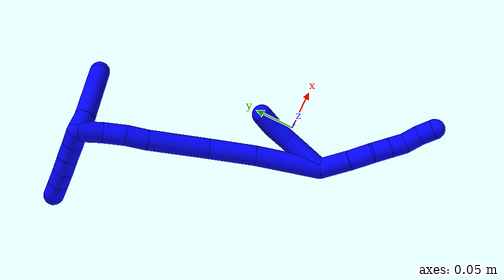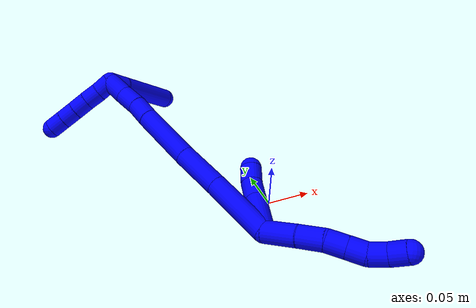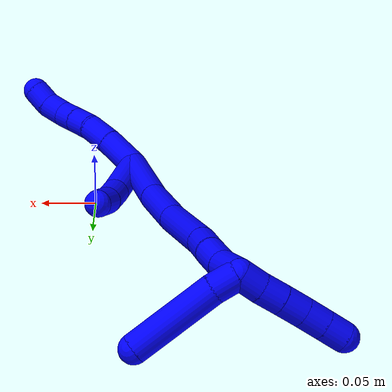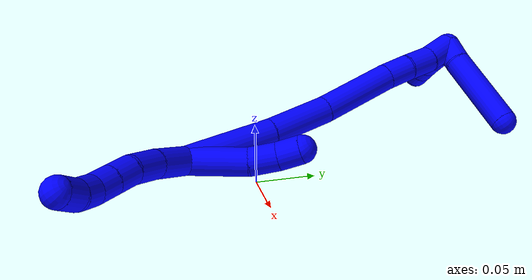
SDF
<sdf version="1.7">
 <world name="default">
  <model name="photoneo_s_sensor">
   <static>1</static>
   <pose>0 0 2 1.57079 1.57079 3.14159</pose>
   <link name="link">
    <inertial><mass>0.1</mass></inertial>
    <sensor name="sensor" type="depth">
     <update_rate>30</update_rate>
     <camera>
      <horizontal_fov>1.22</horizontal_fov>
      <image><width>1920</width><height>1200</height><format>B8G8R8</format></image>
      <clip><near>0.1</near><far>4</far></clip>
      <depth_camera><output>points</output></depth_camera>
     </camera>
     <plugin name="camera_plugin" filename="libgazebo_ros_depth_camera.so">
      <baseline>0.2</baseline>
      <alwaysOn>1</alwaysOn>
      <updateRate>0.0</updateRate>
      <cameraName>camera_ir</cameraName>
      <imageTopicName>/camera/color/image_raw</imageTopicName>
      <cameraInfoTopicName>/camera/color/camera_info</cameraInfoTopicName>
      <depthImageTopicName>/camera/depth/image_raw</depthImageTopicName>
      <depthImageCameraInfoTopicName>/camera/depth/camera_info</depthImageCameraInfoTopicName>
      <pointCloudTopicName>/camera/depth/points</pointCloudTopicName>
      <frameName>fr_optical</frameName>
      <pointCloudCutoff>0.1</pointCloudCutoff>
      <pointCloudCutoffMax>2.0</pointCloudCutoffMax>
      <distortionK1>0</distortionK1>
      <distortionK2>0</distortionK2>
      <distortionK3>0</distortionK3>
      <distortionT1>0</distortionT1>
      <distortionT2>0</distortionT2>
      <CxPrime>0</CxPrime>
      <Cx>0</Cx>
      <Cy>0</Cy>
      <focalLength>0</focalLength>
      <hackBaseline>0</hackBaseline>
     </plugin>
    </sensor>
   </link>
  </model>
  <model name="bin">
   <static>1</static>
   <link name="bottom">
    <collision name="collision-bottom">
     <pose>0 0 -0.01 0 -0 0</pose>
     <geometry><box><size>0.8 0.6 0.02</size></box></geometry>
     <surface>
      <friction><ode><mu>100</mu><mu2>100</mu2></ode></friction>
      <contact><collide_bitmask>65535</collide_bitmask></contact>
     </surface>
    </collision>
   </link>
   <link name="west_wall">
    <collision name="collision-west_wall">
     <pose>-0.41 0 0.1 0 -0 0</pose>
     <geometry><box><size>0.02 0.6 0.2</size></box></geometry>
     <surface>
      <friction><ode><mu>100</mu><mu2>100</mu2></ode></friction>
      <contact><collide_bitmask>65535</collide_bitmask></contact>
     </surface>
    </collision>
   </link>
   <link name="east_wall">
    <collision name="collision-east_wall">
     <pose>0.41 0 0.1 0 -0 0</pose>
     <geometry><box><size>0.02 0.6 0.2</size></box></geometry>
     <surface>
      <friction><ode><mu>100</mu><mu2>100</mu2></ode></friction>
      <contact><collide_bitmask>65535</collide_bitmask></contact>
     </surface>
    </collision>
   </link>
   <link name="south_wall">
    <collision name="collision-south_wall">
     <pose>0 -0.31 0.1 0 -0 0</pose>
     <geometry><box><size>0.8 0.02 0.2</size></box></geometry>
     <surface>
      <friction><ode><mu>100</mu><mu2>100</mu2></ode></friction>
      <contact><collide_bitmask>65535</collide_bitmask></contact>
     </surface>
    </collision>
   </link>
   <link name="north_wall">
    <collision name="collision-north_wall">
     <pose>0 0.31 0.1 0 -0 0</pose>
     <geometry><box><size>0.8 0.02 0.2</size></box></geometry>
     <surface>
      <friction><ode><mu>100</mu><mu2>100</mu2></ode></friction>
      <contact><collide_bitmask>65535</collide_bitmask></contact>
     </surface>
    </collision>
   </link>
  </model>
  <model name="1">
   <static>0</static>
   <link name="1">
    <collision name="collision-cylinder-e_1_2_8">
     <pose>0.015125 -0.0118 -0.001164 1.6691 0.905895 0.985699</pose>
     <geometry><cylinder><radius>0.0125</radius><length>0.038438</length></cylinder></geometry>
     <surface>
      <friction><ode><mu>1.16</mu><mu2>1.16</mu2><slip1>0</slip1><slip2>0</slip2></ode></friction>
      <contact><ode><kp>1e+06</kp><kd>1</kd><max_vel>0</max_vel><min_depth>0.001</min_depth></ode></contact>
     </surface>
    </collision>
    <visual name="visual-cylinder-e_1_2_8">
     <pose>0.015125 -0.0118 -0.001164 1.6691 0.905895 0.985699</pose>
     <geometry><cylinder><radius>0.0125</radius><length>0.038438</length></cylinder></geometry>
     <material><ambient>0 0 1 1</ambient></material>
    </visual>
    <collision name="collision-cylinder-e_2_8_9">
     <pose>0.042337 -0.031429 -0.003347 1.70029 0.992233 1.10468</pose>
     <geometry><cylinder><radius>0.0125</radius><length>0.028874</length></cylinder></geometry>
     <surface>
      <friction><ode><mu>1.16</mu><mu2>1.16</mu2><slip1>0</slip1><slip2>0</slip2></ode></friction>
      <contact><ode><kp>1e+06</kp><kd>1</kd><max_vel>0</max_vel><min_depth>0.001</min_depth></ode></contact>
     </surface>
    </collision>
    <visual name="visual-cylinder-e_2_8_9">
     <pose>0.042337 -0.031429 -0.003347 1.70029 0.992233 1.10468</pose>
     <geometry><cylinder><radius>0.0125</radius><length>0.028874</length></cylinder></geometry>
     <material><ambient>0 0 1 1</ambient></material>
    </visual>
    <collision name="collision-cylinder-e_3_9_10">
     <pose>0.064183 -0.043684 -0.006765 2.06738 1.09453 1.59378</pose>
     <geometry><cylinder><radius>0.0125</radius><length>0.021961</length></cylinder></geometry>
     <surface>
      <friction><ode><mu>1.16</mu><mu2>1.16</mu2><slip1>0</slip1><slip2>0</slip2></ode></friction>
      <contact><ode><kp>1e+06</kp><kd>1</kd><max_vel>0</max_vel><min_depth>0.001</min_depth></ode></contact>
     </surface>
    </collision>
    <visual name="visual-cylinder-e_3_9_10">
     <pose>0.064183 -0.043684 -0.006765 2.06738 1.09453 1.59378</pose>
     <geometry><cylinder><radius>0.0125</radius><length>0.021961</length></cylinder></geometry>
     <material><ambient>0 0 1 1</ambient></material>
    </visual>
    <collision name="collision-cylinder-e_4_10_11">
     <pose>0.082854 -0.052142 -0.011391 2.07566 1.09373 1.60231</pose>
     <geometry><cylinder><radius>0.0125</radius><length>0.020065</length></cylinder></geometry>
     <surface>
      <friction><ode><mu>1.16</mu><mu2>1.16</mu2><slip1>0</slip1><slip2>0</slip2></ode></friction>
      <contact><ode><kp>1e+06</kp><kd>1</kd><max_vel>0</max_vel><min_depth>0.001</min_depth></ode></contact>
     </surface>
    </collision>
    <visual name="visual-cylinder-e_4_10_11">
     <pose>0.082854 -0.052142 -0.011391 2.07566 1.09373 1.60231</pose>
     <geometry><cylinder><radius>0.0125</radius><length>0.020065</length></cylinder></geometry>
     <material><ambient>0 0 1 1</ambient></material>
    </visual>
    <collision name="collision-cylinder-e_5_11_12">
     <pose>0.100702 -0.060924 -0.012621 1.36367 1.07322 0.899622</pose>
     <geometry><cylinder><radius>0.0125</radius><length>0.020339</length></cylinder></geometry>
     <surface>
      <friction><ode><mu>1.16</mu><mu2>1.16</mu2><slip1>0</slip1><slip2>0</slip2></ode></friction>
      <contact><ode><kp>1e+06</kp><kd>1</kd><max_vel>0</max_vel><min_depth>0.001</min_depth></ode></contact>
     </surface>
    </collision>
    <visual name="visual-cylinder-e_5_11_12">
     <pose>0.100702 -0.060924 -0.012621 1.36367 1.07322 0.899622</pose>
     <geometry><cylinder><radius>0.0125</radius><length>0.020339</length></cylinder></geometry>
     <material><ambient>0 0 1 1</ambient></material>
    </visual>
    <collision name="collision-cylinder-e_6_12_6">
     <pose>0.116811 -0.072673 -0.009943 1.33521 0.783629 0.629794</pose>
     <geometry><cylinder><radius>0.0125</radius><length>0.020324</length></cylinder></geometry>
     <surface>
      <friction><ode><mu>1.16</mu><mu2>1.16</mu2><slip1>0</slip1><slip2>0</slip2></ode></friction>
      <contact><ode><kp>1e+06</kp><kd>1</kd><max_vel>0</max_vel><min_depth>0.001</min_depth></ode></contact>
     </surface>
    </collision>
    <visual name="visual-cylinder-e_6_12_6">
     <pose>0.116811 -0.072673 -0.009943 1.33521 0.783629 0.629794</pose>
     <geometry><cylinder><radius>0.0125</radius><length>0.020324</length></cylinder></geometry>
     <material><ambient>0 0 1 1</ambient></material>
    </visual>
    <collision name="collision-cylinder-e_1_2_13">
     <pose>-0.002511 0.017706 0.019651 -0.733371 -0.094634 0.036368</pose>
     <geometry><cylinder><radius>0.0125</radius><length>0.05314</length></cylinder></geometry>
     <surface>
      <friction><ode><mu>1.16</mu><mu2>1.16</mu2><slip1>0</slip1><slip2>0</slip2></ode></friction>
      <contact><ode><kp>1e+06</kp><kd>1</kd><max_vel>0</max_vel><min_depth>0.001</min_depth></ode></contact>
     </surface>
    </collision>
    <visual name="visual-cylinder-e_1_2_13">
     <pose>-0.002511 0.017706 0.019651 -0.733371 -0.094634 0.036368</pose>
     <geometry><cylinder><radius>0.0125</radius><length>0.05314</length></cylinder></geometry>
     <material><ambient>0 0 1 1</ambient></material>
    </visual>
    <collision name="collision-cylinder-e_2_13_14">
     <pose>-0.007325 0.041914 0.050066 -0.54341 -0.181168 0.0506</pose>
     <geometry><cylinder><radius>0.0125</radius><length>0.02557</length></cylinder></geometry>
     <surface>
      <friction><ode><mu>1.16</mu><mu2>1.16</mu2><slip1>0</slip1><slip2>0</slip2></ode></friction>
      <contact><ode><kp>1e+06</kp><kd>1</kd><max_vel>0</max_vel><min_depth>0.001</min_depth></ode></contact>
     </surface>
    </collision>
    <visual name="visual-cylinder-e_2_13_14">
     <pose>-0.007325 0.041914 0.050066 -0.54341 -0.181168 0.0506</pose>
     <geometry><cylinder><radius>0.0125</radius><length>0.02557</length></cylinder></geometry>
     <material><ambient>0 0 1 1</ambient></material>
    </visual>
    <collision name="collision-cylinder-e_3_14_5">
     <pose>-0.010472 0.052167 0.070757 -0.361241 -0.07935 0.014497</pose>
     <geometry><cylinder><radius>0.0125</radius><length>0.02129</length></cylinder></geometry>
     <surface>
      <friction><ode><mu>1.16</mu><mu2>1.16</mu2><slip1>0</slip1><slip2>0</slip2></ode></friction>
      <contact><ode><kp>1e+06</kp><kd>1</kd><max_vel>0</max_vel><min_depth>0.001</min_depth></ode></contact>
     </surface>
    </collision>
    <visual name="visual-cylinder-e_3_14_5">
     <pose>-0.010472 0.052167 0.070757 -0.361241 -0.07935 0.014497</pose>
     <geometry><cylinder><radius>0.0125</radius><length>0.02129</length></cylinder></geometry>
     <material><ambient>0 0 1 1</ambient></material>
    </visual>
    <collision name="collision-cylinder-e_1_2_15">
     <pose>-0.025403 0.02142 0.024931 -0.709796 -0.657975 0.251696</pose>
     <geometry><cylinder><radius>0.0125</radius><length>0.083083</length></cylinder></geometry>
     <surface>
      <friction><ode><mu>1.16</mu><mu2>1.16</mu2><slip1>0</slip1><slip2>0</slip2></ode></friction>
      <contact><ode><kp>1e+06</kp><kd>1</kd><max_vel>0</max_vel><min_depth>0.001</min_depth></ode></contact>
     </surface>
    </collision>
    <visual name="visual-cylinder-e_1_2_15">
     <pose>-0.025403 0.02142 0.024931 -0.709796 -0.657975 0.251696</pose>
     <geometry><cylinder><radius>0.0125</radius><length>0.083083</length></cylinder></geometry>
     <material><ambient>0 0 1 1</ambient></material>
    </visual>
    <collision name="collision-cylinder-e_2_15_16">
     <pose>-0.070118 0.056251 0.067304 -0.655486 -0.720365 0.254713</pose>
     <geometry><cylinder><radius>0.0125</radius><length>0.058549</length></cylinder></geometry>
     <surface>
      <friction><ode><mu>1.16</mu><mu2>1.16</mu2><slip1>0</slip1><slip2>0</slip2></ode></friction>
      <contact><ode><kp>1e+06</kp><kd>1</kd><max_vel>0</max_vel><min_depth>0.001</min_depth></ode></contact>
     </surface>
    </collision>
    <visual name="visual-cylinder-e_2_15_16">
     <pose>-0.070118 0.056251 0.067304 -0.655486 -0.720365 0.254713</pose>
     <geometry><cylinder><radius>0.0125</radius><length>0.058549</length></cylinder></geometry>
     <material><ambient>0 0 1 1</ambient></material>
    </visual>
    <collision name="collision-cylinder-e_3_16_17">
     <pose>-0.114724 0.083919 0.108255 -0.545144 -0.743756 0.217189</pose>
     <geometry><cylinder><radius>0.0125</radius><length>0.074719</length></cylinder></geometry>
     <surface>
      <friction><ode><mu>1.16</mu><mu2>1.16</mu2><slip1>0</slip1><slip2>0</slip2></ode></friction>
      <contact><ode><kp>1e+06</kp><kd>1</kd><max_vel>0</max_vel><min_depth>0.001</min_depth></ode></contact>
     </surface>
    </collision>
    <visual name="visual-cylinder-e_3_16_17">
     <pose>-0.114724 0.083919 0.108255 -0.545144 -0.743756 0.217189</pose>
     <geometry><cylinder><radius>0.0125</radius><length>0.074719</length></cylinder></geometry>
     <material><ambient>0 0 1 1</ambient></material>
    </visual>
    <collision name="collision-cylinder-e_4_17_18">
     <pose>-0.148169 0.103928 0.140428 -0.586034 -0.664746 0.207534</pose>
     <geometry><cylinder><radius>0.0125</radius><length>0.026428</length></cylinder></geometry>
     <surface>
      <friction><ode><mu>1.16</mu><mu2>1.16</mu2><slip1>0</slip1><slip2>0</slip2></ode></friction>
      <contact><ode><kp>1e+06</kp><kd>1</kd><max_vel>0</max_vel><min_depth>0.001</min_depth></ode></contact>
     </surface>
    </collision>
    <visual name="visual-cylinder-e_4_17_18">
     <pose>-0.148169 0.103928 0.140428 -0.586034 -0.664746 0.207534</pose>
     <geometry><cylinder><radius>0.0125</radius><length>0.026428</length></cylinder></geometry>
     <material><ambient>0 0 1 1</ambient></material>
    </visual>
    <collision name="collision-cylinder-e_5_18_19">
     <pose>-0.165715 0.116268 0.156832 -0.705285 -0.746144 0.286124</pose>
     <geometry><cylinder><radius>0.0125</radius><length>0.02768</length></cylinder></geometry>
     <surface>
      <friction><ode><mu>1.16</mu><mu2>1.16</mu2><slip1>0</slip1><slip2>0</slip2></ode></friction>
      <contact><ode><kp>1e+06</kp><kd>1</kd><max_vel>0</max_vel><min_depth>0.001</min_depth></ode></contact>
     </surface>
    </collision>
    <visual name="visual-cylinder-e_5_18_19">
     <pose>-0.165715 0.116268 0.156832 -0.705285 -0.746144 0.286124</pose>
     <geometry><cylinder><radius>0.0125</radius><length>0.02768</length></cylinder></geometry>
     <material><ambient>0 0 1 1</ambient></material>
    </visual>
    <collision name="collision-cylinder-e_6_19_1">
     <pose>-0.18607 0.127523 0.173303 -0.4908 -0.836124 0.221611</pose>
     <geometry><cylinder><radius>0.0125</radius><length>0.02954</length></cylinder></geometry>
     <surface>
      <friction><ode><mu>1.16</mu><mu2>1.16</mu2><slip1>0</slip1><slip2>0</slip2></ode></friction>
      <contact><ode><kp>1e+06</kp><kd>1</kd><max_vel>0</max_vel><min_depth>0.001</min_depth></ode></contact>
     </surface>
    </collision>
    <visual name="visual-cylinder-e_6_19_1">
     <pose>-0.18607 0.127523 0.173303 -0.4908 -0.836124 0.221611</pose>
     <geometry><cylinder><radius>0.0125</radius><length>0.02954</length></cylinder></geometry>
     <material><ambient>0 0 1 1</ambient></material>
    </visual>
    <collision name="collision-cylinder-e_1_1_20">
     <pose>-0.203193 0.136105 0.175202 -2.62124 -0.66393 1.82642</pose>
     <geometry><cylinder><radius>0.0125</radius><length>0.02</length></cylinder></geometry>
     <surface>
      <friction><ode><mu>1.16</mu><mu2>1.16</mu2><slip1>0</slip1><slip2>0</slip2></ode></friction>
      <contact><ode><kp>1e+06</kp><kd>1</kd><max_vel>0</max_vel><min_depth>0.001</min_depth></ode></contact>
     </surface>
    </collision>
    <visual name="visual-cylinder-e_1_1_20">
     <pose>-0.203193 0.136105 0.175202 -2.62124 -0.66393 1.82642</pose>
     <geometry><cylinder><radius>0.0125</radius><length>0.02</length></cylinder></geometry>
     <material><ambient>0 0 1 1</ambient></material>
    </visual>
    <collision name="collision-cylinder-e_2_20_21">
     <pose>-0.216117 0.143416 0.16183 -2.66266 -0.742594 2.02143</pose>
     <geometry><cylinder><radius>0.0125</radius><length>0.02</length></cylinder></geometry>
     <surface>
      <friction><ode><mu>1.16</mu><mu2>1.16</mu2><slip1>0</slip1><slip2>0</slip2></ode></friction>
      <contact><ode><kp>1e+06</kp><kd>1</kd><max_vel>0</max_vel><min_depth>0.001</min_depth></ode></contact>
     </surface>
    </collision>
    <visual name="visual-cylinder-e_2_20_21">
     <pose>-0.216117 0.143416 0.16183 -2.66266 -0.742594 2.02143</pose>
     <geometry><cylinder><radius>0.0125</radius><length>0.02</length></cylinder></geometry>
     <material><ambient>0 0 1 1</ambient></material>
    </visual>
    <collision name="collision-cylinder-e_3_21_22">
     <pose>-0.229385 0.150255 0.148523 -2.67099 -0.708335 1.99113</pose>
     <geometry><cylinder><radius>0.0125</radius><length>0.02</length></cylinder></geometry>
     <surface>
      <friction><ode><mu>1.16</mu><mu2>1.16</mu2><slip1>0</slip1><slip2>0</slip2></ode></friction>
      <contact><ode><kp>1e+06</kp><kd>1</kd><max_vel>0</max_vel><min_depth>0.001</min_depth></ode></contact>
     </surface>
    </collision>
    <visual name="visual-cylinder-e_3_21_22">
     <pose>-0.229385 0.150255 0.148523 -2.67099 -0.708335 1.99113</pose>
     <geometry><cylinder><radius>0.0125</radius><length>0.02</length></cylinder></geometry>
     <material><ambient>0 0 1 1</ambient></material>
    </visual>
    <collision name="collision-cylinder-e_4_22_23">
     <pose>-0.242464 0.157373 0.135174 -2.63221 -0.717268 1.92748</pose>
     <geometry><cylinder><radius>0.0125</radius><length>0.02</length></cylinder></geometry>
     <surface>
      <friction><ode><mu>1.16</mu><mu2>1.16</mu2><slip1>0</slip1><slip2>0</slip2></ode></friction>
      <contact><ode><kp>1e+06</kp><kd>1</kd><max_vel>0</max_vel><min_depth>0.001</min_depth></ode></contact>
     </surface>
    </collision>
    <visual name="visual-cylinder-e_4_22_23">
     <pose>-0.242464 0.157373 0.135174 -2.63221 -0.717268 1.92748</pose>
     <geometry><cylinder><radius>0.0125</radius><length>0.02</length></cylinder></geometry>
     <material><ambient>0 0 1 1</ambient></material>
    </visual>
    <collision name="collision-cylinder-e_5_23_4">
     <pose>-0.255638 0.164769 0.12207 -2.62327 -0.720957 1.91567</pose>
     <geometry><cylinder><radius>0.0125</radius><length>0.02</length></cylinder></geometry>
     <surface>
      <friction><ode><mu>1.16</mu><mu2>1.16</mu2><slip1>0</slip1><slip2>0</slip2></ode></friction>
      <contact><ode><kp>1e+06</kp><kd>1</kd><max_vel>0</max_vel><min_depth>0.001</min_depth></ode></contact>
     </surface>
    </collision>
    <visual name="visual-cylinder-e_5_23_4">
     <pose>-0.255638 0.164769 0.12207 -2.62327 -0.720957 1.91567</pose>
     <geometry><cylinder><radius>0.0125</radius><length>0.02</length></cylinder></geometry>
     <material><ambient>0 0 1 1</ambient></material>
    </visual>
    <collision name="collision-cylinder-e_1_1_24">
     <pose>-0.187624 0.138455 0.183212 -1.38506 0.975191 -0.828911</pose>
     <geometry><cylinder><radius>0.0125</radius><length>0.022727</length></cylinder></geometry>
     <surface>
      <friction><ode><mu>1.16</mu><mu2>1.16</mu2><slip1>0</slip1><slip2>0</slip2></ode></friction>
      <contact><ode><kp>1e+06</kp><kd>1</kd><max_vel>0</max_vel><min_depth>0.001</min_depth></ode></contact>
     </surface>
    </collision>
    <visual name="visual-cylinder-e_1_1_24">
     <pose>-0.187624 0.138455 0.183212 -1.38506 0.975191 -0.828911</pose>
     <geometry><cylinder><radius>0.0125</radius><length>0.022727</length></cylinder></geometry>
     <material><ambient>0 0 1 1</ambient></material>
    </visual>
    <collision name="collision-cylinder-e_2_24_3">
     <pose>-0.149869 0.170231 0.190587 -1.33249 0.823748 -0.66164</pose>
     <geometry><cylinder><radius>0.0125</radius><length>0.077273</length></cylinder></geometry>
     <surface>
      <friction><ode><mu>1.16</mu><mu2>1.16</mu2><slip1>0</slip1><slip2>0</slip2></ode></friction>
      <contact><ode><kp>1e+06</kp><kd>1</kd><max_vel>0</max_vel><min_depth>0.001</min_depth></ode></contact>
     </surface>
    </collision>
    <visual name="visual-cylinder-e_2_24_3">
     <pose>-0.149869 0.170231 0.190587 -1.33249 0.823748 -0.66164</pose>
     <geometry><cylinder><radius>0.0125</radius><length>0.077273</length></cylinder></geometry>
     <material><ambient>0 0 1 1</ambient></material>
    </visual>
    <collision name="collision-sphere-3">
     <pose>-0.121522 0.195742 0.196784 0 -0 0</pose>
     <geometry><sphere><radius>0.0125</radius></sphere></geometry>
     <surface>
      <friction><ode><mu>1.16</mu><mu2>1.16</mu2><slip1>0</slip1><slip2>0</slip2></ode></friction>
      <contact><ode><kp>1e+06</kp><kd>1</kd><max_vel>0</max_vel><min_depth>0.001</min_depth></ode></contact>
     </surface>
    </collision>
    <visual name="visual-sphere-3">
     <pose>-0.121522 0.195742 0.196784 0 -0 0</pose>
     <geometry><sphere><radius>0.0125</radius></sphere></geometry>
     <material><ambient>0 0 1 1</ambient></material>
    </visual>
    <collision name="collision-sphere-24">
     <pose>-0.178217 0.144721 0.184389 0 -0 0</pose>
     <geometry><sphere><radius>0.0125</radius></sphere></geometry>
     <surface>
      <friction><ode><mu>1.16</mu><mu2>1.16</mu2><slip1>0</slip1><slip2>0</slip2></ode></friction>
      <contact><ode><kp>1e+06</kp><kd>1</kd><max_vel>0</max_vel><min_depth>0.001</min_depth></ode></contact>
     </surface>
    </collision>
    <visual name="visual-sphere-24">
     <pose>-0.178217 0.144721 0.184389 0 -0 0</pose>
     <geometry><sphere><radius>0.0125</radius></sphere></geometry>
     <material><ambient>0 0 1 1</ambient></material>
    </visual>
    <collision name="collision-sphere-4">
     <pose>-0.262239 0.168491 0.115545 0 -0 0</pose>
     <geometry><sphere><radius>0.0125</radius></sphere></geometry>
     <surface>
      <friction><ode><mu>1.16</mu><mu2>1.16</mu2><slip1>0</slip1><slip2>0</slip2></ode></friction>
      <contact><ode><kp>1e+06</kp><kd>1</kd><max_vel>0</max_vel><min_depth>0.001</min_depth></ode></contact>
     </surface>
    </collision>
    <visual name="visual-sphere-4">
     <pose>-0.262239 0.168491 0.115545 0 -0 0</pose>
     <geometry><sphere><radius>0.0125</radius></sphere></geometry>
     <material><ambient>0 0 1 1</ambient></material>
    </visual>
    <collision name="collision-sphere-23">
     <pose>-0.249037 0.161048 0.128595 0 -0 0</pose>
     <geometry><sphere><radius>0.0125</radius></sphere></geometry>
     <surface>
      <friction><ode><mu>1.16</mu><mu2>1.16</mu2><slip1>0</slip1><slip2>0</slip2></ode></friction>
      <contact><ode><kp>1e+06</kp><kd>1</kd><max_vel>0</max_vel><min_depth>0.001</min_depth></ode></contact>
     </surface>
    </collision>
    <visual name="visual-sphere-23">
     <pose>-0.249037 0.161048 0.128595 0 -0 0</pose>
     <geometry><sphere><radius>0.0125</radius></sphere></geometry>
     <material><ambient>0 0 1 1</ambient></material>
    </visual>
    <collision name="collision-sphere-22">
     <pose>-0.23589 0.153698 0.141754 0 -0 0</pose>
     <geometry><sphere><radius>0.0125</radius></sphere></geometry>
     <surface>
      <friction><ode><mu>1.16</mu><mu2>1.16</mu2><slip1>0</slip1><slip2>0</slip2></ode></friction>
      <contact><ode><kp>1e+06</kp><kd>1</kd><max_vel>0</max_vel><min_depth>0.001</min_depth></ode></contact>
     </surface>
    </collision>
    <visual name="visual-sphere-22">
     <pose>-0.23589 0.153698 0.141754 0 -0 0</pose>
     <geometry><sphere><radius>0.0125</radius></sphere></geometry>
     <material><ambient>0 0 1 1</ambient></material>
    </visual>
    <collision name="collision-sphere-21">
     <pose>-0.222879 0.146811 0.155292 0 -0 0</pose>
     <geometry><sphere><radius>0.0125</radius></sphere></geometry>
     <surface>
      <friction><ode><mu>1.16</mu><mu2>1.16</mu2><slip1>0</slip1><slip2>0</slip2></ode></friction>
      <contact><ode><kp>1e+06</kp><kd>1</kd><max_vel>0</max_vel><min_depth>0.001</min_depth></ode></contact>
     </surface>
    </collision>
    <visual name="visual-sphere-21">
     <pose>-0.222879 0.146811 0.155292 0 -0 0</pose>
     <geometry><sphere><radius>0.0125</radius></sphere></geometry>
     <material><ambient>0 0 1 1</ambient></material>
    </visual>
    <collision name="collision-sphere-20">
     <pose>-0.209355 0.140021 0.168368 0 -0 0</pose>
     <geometry><sphere><radius>0.0125</radius></sphere></geometry>
     <surface>
      <friction><ode><mu>1.16</mu><mu2>1.16</mu2><slip1>0</slip1><slip2>0</slip2></ode></friction>
      <contact><ode><kp>1e+06</kp><kd>1</kd><max_vel>0</max_vel><min_depth>0.001</min_depth></ode></contact>
     </surface>
    </collision>
    <visual name="visual-sphere-20">
     <pose>-0.209355 0.140021 0.168368 0 -0 0</pose>
     <geometry><sphere><radius>0.0125</radius></sphere></geometry>
     <material><ambient>0 0 1 1</ambient></material>
    </visual>
    <collision name="collision-sphere-12">
     <pose>0.109639 -0.065674 -0.011623 0 -0 0</pose>
     <geometry><sphere><radius>0.0125</radius></sphere></geometry>
     <surface>
      <friction><ode><mu>1.16</mu><mu2>1.16</mu2><slip1>0</slip1><slip2>0</slip2></ode></friction>
      <contact><ode><kp>1e+06</kp><kd>1</kd><max_vel>0</max_vel><min_depth>0.001</min_depth></ode></contact>
     </surface>
    </collision>
    <visual name="visual-sphere-12">
     <pose>0.109639 -0.065674 -0.011623 0 -0 0</pose>
     <geometry><sphere><radius>0.0125</radius></sphere></geometry>
     <material><ambient>0 0 1 1</ambient></material>
    </visual>
    <collision name="collision-sphere-11">
     <pose>0.091766 -0.056174 -0.01362 0 -0 0</pose>
     <geometry><sphere><radius>0.0125</radius></sphere></geometry>
     <surface>
      <friction><ode><mu>1.16</mu><mu2>1.16</mu2><slip1>0</slip1><slip2>0</slip2></ode></friction>
      <contact><ode><kp>1e+06</kp><kd>1</kd><max_vel>0</max_vel><min_depth>0.001</min_depth></ode></contact>
     </surface>
    </collision>
    <visual name="visual-sphere-11">
     <pose>0.091766 -0.056174 -0.01362 0 -0 0</pose>
     <geometry><sphere><radius>0.0125</radius></sphere></geometry>
     <material><ambient>0 0 1 1</ambient></material>
    </visual>
    <collision name="collision-sphere-10">
     <pose>0.073941 -0.04811 -0.009163 0 -0 0</pose>
     <geometry><sphere><radius>0.0125</radius></sphere></geometry>
     <surface>
      <friction><ode><mu>1.16</mu><mu2>1.16</mu2><slip1>0</slip1><slip2>0</slip2></ode></friction>
      <contact><ode><kp>1e+06</kp><kd>1</kd><max_vel>0</max_vel><min_depth>0.001</min_depth></ode></contact>
     </surface>
    </collision>
    <visual name="visual-sphere-10">
     <pose>0.073941 -0.04811 -0.009163 0 -0 0</pose>
     <geometry><sphere><radius>0.0125</radius></sphere></geometry>
     <material><ambient>0 0 1 1</ambient></material>
    </visual>
    <collision name="collision-sphere-9">
     <pose>0.054424 -0.039257 -0.004366 0 -0 0</pose>
     <geometry><sphere><radius>0.0125</radius></sphere></geometry>
     <surface>
      <friction><ode><mu>1.16</mu><mu2>1.16</mu2><slip1>0</slip1><slip2>0</slip2></ode></friction>
      <contact><ode><kp>1e+06</kp><kd>1</kd><max_vel>0</max_vel><min_depth>0.001</min_depth></ode></contact>
     </surface>
    </collision>
    <visual name="visual-sphere-9">
     <pose>0.054424 -0.039257 -0.004366 0 -0 0</pose>
     <geometry><sphere><radius>0.0125</radius></sphere></geometry>
     <material><ambient>0 0 1 1</ambient></material>
    </visual>
    <collision name="collision-sphere-2">
     <geometry><sphere><radius>0.0125</radius></sphere></geometry>
     <surface>
      <friction><ode><mu>1.16</mu><mu2>1.16</mu2><slip1>0</slip1><slip2>0</slip2></ode></friction>
      <contact><ode><kp>1e+06</kp><kd>1</kd><max_vel>0</max_vel><min_depth>0.001</min_depth></ode></contact>
     </surface>
    </collision>
    <visual name="visual-sphere-2">
     <geometry><sphere><radius>0.0125</radius></sphere></geometry>
     <material><ambient>0 0 1 1</ambient></material>
    </visual>
    <collision name="collision-sphere-19">
     <pose>-0.17511 0.122856 0.16457 0 -0 0</pose>
     <geometry><sphere><radius>0.0125</radius></sphere></geometry>
     <surface>
      <friction><ode><mu>1.16</mu><mu2>1.16</mu2><slip1>0</slip1><slip2>0</slip2></ode></friction>
      <contact><ode><kp>1e+06</kp><kd>1</kd><max_vel>0</max_vel><min_depth>0.001</min_depth></ode></contact>
     </surface>
    </collision>
    <visual name="visual-sphere-19">
     <pose>-0.17511 0.122856 0.16457 0 -0 0</pose>
     <geometry><sphere><radius>0.0125</radius></sphere></geometry>
     <material><ambient>0 0 1 1</ambient></material>
    </visual>
    <collision name="collision-sphere-8">
     <pose>0.03025 -0.023601 -0.002327 0 -0 0</pose>
     <geometry><sphere><radius>0.0125</radius></sphere></geometry>
     <surface>
      <friction><ode><mu>1.16</mu><mu2>1.16</mu2><slip1>0</slip1><slip2>0</slip2></ode></friction>
      <contact><ode><kp>1e+06</kp><kd>1</kd><max_vel>0</max_vel><min_depth>0.001</min_depth></ode></contact>
     </surface>
    </collision>
    <visual name="visual-sphere-8">
     <pose>0.03025 -0.023601 -0.002327 0 -0 0</pose>
     <geometry><sphere><radius>0.0125</radius></sphere></geometry>
     <material><ambient>0 0 1 1</ambient></material>
    </visual>
    <collision name="collision-sphere-6">
     <pose>0.123984 -0.079673 -0.008263 0 -0 0</pose>
     <geometry><sphere><radius>0.0125</radius></sphere></geometry>
     <surface>
      <friction><ode><mu>1.16</mu><mu2>1.16</mu2><slip1>0</slip1><slip2>0</slip2></ode></friction>
      <contact><ode><kp>1e+06</kp><kd>1</kd><max_vel>0</max_vel><min_depth>0.001</min_depth></ode></contact>
     </surface>
    </collision>
    <visual name="visual-sphere-6">
     <pose>0.123984 -0.079673 -0.008263 0 -0 0</pose>
     <geometry><sphere><radius>0.0125</radius></sphere></geometry>
     <material><ambient>0 0 1 1</ambient></material>
    </visual>
    <collision name="collision-sphere-13">
     <pose>-0.005021 0.035412 0.039302 0 -0 0</pose>
     <geometry><sphere><radius>0.0125</radius></sphere></geometry>
     <surface>
      <friction><ode><mu>1.16</mu><mu2>1.16</mu2><slip1>0</slip1><slip2>0</slip2></ode></friction>
      <contact><ode><kp>1e+06</kp><kd>1</kd><max_vel>0</max_vel><min_depth>0.001</min_depth></ode></contact>
     </surface>
    </collision>
    <visual name="visual-sphere-13">
     <pose>-0.005021 0.035412 0.039302 0 -0 0</pose>
     <geometry><sphere><radius>0.0125</radius></sphere></geometry>
     <material><ambient>0 0 1 1</ambient></material>
    </visual>
    <collision name="collision-sphere-14">
     <pose>-0.009628 0.048416 0.06083 0 -0 0</pose>
     <geometry><sphere><radius>0.0125</radius></sphere></geometry>
     <surface>
      <friction><ode><mu>1.16</mu><mu2>1.16</mu2><slip1>0</slip1><slip2>0</slip2></ode></friction>
      <contact><ode><kp>1e+06</kp><kd>1</kd><max_vel>0</max_vel><min_depth>0.001</min_depth></ode></contact>
     </surface>
    </collision>
    <visual name="visual-sphere-14">
     <pose>-0.009628 0.048416 0.06083 0 -0 0</pose>
     <geometry><sphere><radius>0.0125</radius></sphere></geometry>
     <material><ambient>0 0 1 1</ambient></material>
    </visual>
    <collision name="collision-sphere-5">
     <pose>-0.011316 0.055917 0.080684 0 -0 0</pose>
     <geometry><sphere><radius>0.0125</radius></sphere></geometry>
     <surface>
      <friction><ode><mu>1.16</mu><mu2>1.16</mu2><slip1>0</slip1><slip2>0</slip2></ode></friction>
      <contact><ode><kp>1e+06</kp><kd>1</kd><max_vel>0</max_vel><min_depth>0.001</min_depth></ode></contact>
     </surface>
    </collision>
    <visual name="visual-sphere-5">
     <pose>-0.011316 0.055917 0.080684 0 -0 0</pose>
     <geometry><sphere><radius>0.0125</radius></sphere></geometry>
     <material><ambient>0 0 1 1</ambient></material>
    </visual>
    <collision name="collision-sphere-15">
     <pose>-0.050807 0.04284 0.049862 0 -0 0</pose>
     <geometry><sphere><radius>0.0125</radius></sphere></geometry>
     <surface>
      <friction><ode><mu>1.16</mu><mu2>1.16</mu2><slip1>0</slip1><slip2>0</slip2></ode></friction>
      <contact><ode><kp>1e+06</kp><kd>1</kd><max_vel>0</max_vel><min_depth>0.001</min_depth></ode></contact>
     </surface>
    </collision>
    <visual name="visual-sphere-15">
     <pose>-0.050807 0.04284 0.049862 0 -0 0</pose>
     <geometry><sphere><radius>0.0125</radius></sphere></geometry>
     <material><ambient>0 0 1 1</ambient></material>
    </visual>
    <collision name="collision-sphere-16">
     <pose>-0.089429 0.069662 0.084746 0 -0 0</pose>
     <geometry><sphere><radius>0.0125</radius></sphere></geometry>
     <surface>
      <friction><ode><mu>1.16</mu><mu2>1.16</mu2><slip1>0</slip1><slip2>0</slip2></ode></friction>
      <contact><ode><kp>1e+06</kp><kd>1</kd><max_vel>0</max_vel><min_depth>0.001</min_depth></ode></contact>
     </surface>
    </collision>
    <visual name="visual-sphere-16">
     <pose>-0.089429 0.069662 0.084746 0 -0 0</pose>
     <geometry><sphere><radius>0.0125</radius></sphere></geometry>
     <material><ambient>0 0 1 1</ambient></material>
    </visual>
    <collision name="collision-sphere-17">
     <pose>-0.140018 0.098176 0.131763 0 -0 0</pose>
     <geometry><sphere><radius>0.0125</radius></sphere></geometry>
     <surface>
      <friction><ode><mu>1.16</mu><mu2>1.16</mu2><slip1>0</slip1><slip2>0</slip2></ode></friction>
      <contact><ode><kp>1e+06</kp><kd>1</kd><max_vel>0</max_vel><min_depth>0.001</min_depth></ode></contact>
     </surface>
    </collision>
    <visual name="visual-sphere-17">
     <pose>-0.140018 0.098176 0.131763 0 -0 0</pose>
     <geometry><sphere><radius>0.0125</radius></sphere></geometry>
     <material><ambient>0 0 1 1</ambient></material>
    </visual>
    <collision name="collision-sphere-18">
     <pose>-0.156321 0.10968 0.149093 0 -0 0</pose>
     <geometry><sphere><radius>0.0125</radius></sphere></geometry>
     <surface>
      <friction><ode><mu>1.16</mu><mu2>1.16</mu2><slip1>0</slip1><slip2>0</slip2></ode></friction>
      <contact><ode><kp>1e+06</kp><kd>1</kd><max_vel>0</max_vel><min_depth>0.001</min_depth></ode></contact>
     </surface>
    </collision>
    <visual name="visual-sphere-18">
     <pose>-0.156321 0.10968 0.149093 0 -0 0</pose>
     <geometry><sphere><radius>0.0125</radius></sphere></geometry>
     <material><ambient>0 0 1 1</ambient></material>
    </visual>
    <collision name="collision-sphere-1">
     <pose>-0.197031 0.13219 0.182035 0 -0 0</pose>
     <geometry><sphere><radius>0.0125</radius></sphere></geometry>
     <surface>
      <friction><ode><mu>1.16</mu><mu2>1.16</mu2><slip1>0</slip1><slip2>0</slip2></ode></friction>
      <contact><ode><kp>1e+06</kp><kd>1</kd><max_vel>0</max_vel><min_depth>0.001</min_depth></ode></contact>
     </surface>
    </collision>
    <visual name="visual-sphere-1">
     <pose>-0.197031 0.13219 0.182035 0 -0 0</pose>
     <geometry><sphere><radius>0.0125</radius></sphere></geometry>
     <material><ambient>0 0 1 1</ambient></material>
    </visual>
    <inertial>
     <pose>-0.078419 0.06594 0.085164 0 -0 0</pose>
     <mass>0.75</mass>
     <inertia><ixx>0.00014</ixx><ixy>0</ixy><ixz>0</ixz><iyy>0.00019</iyy><iyz>0</iyz><izz>-3.4e-05</izz></inertia>
    </inertial>
   </link>
   <pose>-0.033138 -0.053144 0.012532 -0.879082 0.207115 -0.385425</pose>
  </model>
 </world>
</sdf>
